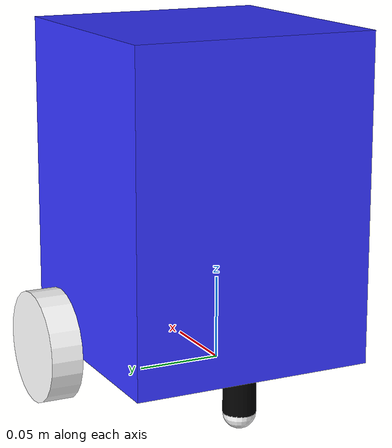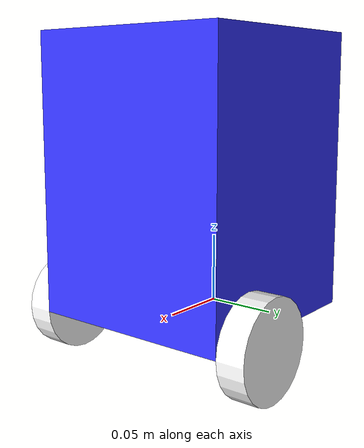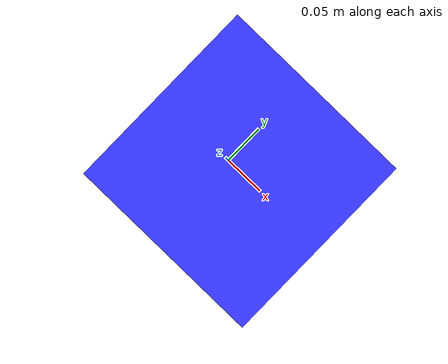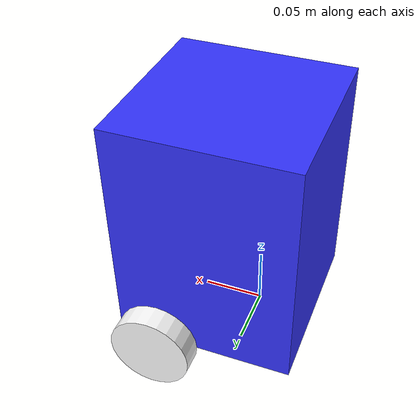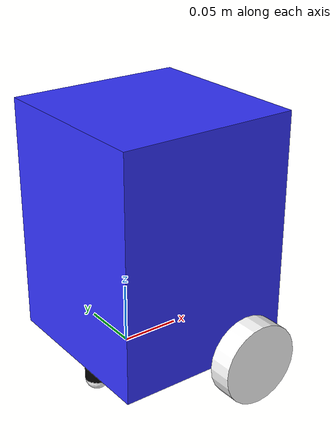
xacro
<?xml version="1.0"?>
<robot xmlns:xacro="http://www.ros.org/wiki/xacro" >

    <xacro:include filename="inertia.xacro"/>

    <material name="white">
        <color rgba="1 1 1 1" />
    </material>

    <material name="orange">
        <color rgba="1 0.3 0.1 1"/>
    </material>

    <material name="blue">
        <color rgba="0.2 0.2 1 1"/>
    </material>

    <material name="black">
        <color rgba="0 0 0 1"/>
    </material>

    <!-- BASE LINK -->

    <link name="base_link">

    </link>

    <!-- CHASSIS LINK -->

    <joint name="chassis_joint" type="fixed">
        <parent link="base_link"/>
        <child link="chassis"/>
        <origin xyz="-0.05 0 0"/>
    </joint>

    <link name="chassis">
        <visual>
            <origin xyz="0.075 0 0.1"/>
            <geometry>
                <box size="0.15 0.15 0.2"/>
            </geometry>
            <material name="blue"/>
        </visual>
        <collision>
            <origin xyz="0.075 0 0.1"/>
            <geometry>
                <box size="0.15 0.15 0.2"/>
            </geometry>
        </collision>
        <xacro:inertial_box mass="1" x="0.15" y="0.15" z="0.3">
            <origin xyz="0.075 0 0.1" rpy="0 0 0"/>
        </xacro:inertial_box>
    </link>
    <gazebo reference="chassis">
        <material>Gazebo/Blue</material>
    </gazebo>

    <!-- LEFT WHEEL LINK -->

    <joint name="left_wheel_joint" type="continuous">
        <parent link="chassis"/>
        <child link="left_wheel"/>
        <origin xyz="0.115 0.085 0" rpy="-${pi/2} 0 0" />
        <axis xyz="0 0 1"/>
    </joint>

    <link name="left_wheel">
        <visual>
            <geometry>
                <cylinder radius="0.035" length="0.02"/>
            </geometry>
            <material name="white"/>
        </visual>
        <collision>
            <geometry>
                <cylinder radius="0.035" length="0.02"/>
            </geometry>
        </collision>
        <xacro:inertial_cylinder mass="0.05" length="0.02" radius="0.035">
            <origin xyz="0 0 0" rpy="0 0 0"/>
        </xacro:inertial_cylinder>
    </link>

    <gazebo reference="left_wheel">
        <material>Gazebo/White</material>
    </gazebo>

    <!-- RIGHT WHEEL LINK -->

    <joint name="right_wheel_joint" type="continuous">
        <parent link="chassis"/>
        <child link="right_wheel"/>
        <origin xyz="0.115 -0.085 0" rpy="${pi/2} 0 0" />
        <axis xyz="0 0 -1"/>
    </joint>

    <link name="right_wheel">
        <visual>
            <geometry>
                <cylinder radius="0.035" length="0.02"/>
            </geometry>
            <material name="white"/>
        </visual>
        <collision>
            <geometry>
                <cylinder radius="0.035" length="0.02"/>
            </geometry>
        </collision>
        <xacro:inertial_cylinder mass="0.05" length="0.02" radius="0.035">
            <origin xyz="0 0 0" rpy="0 0 0"/>
        </xacro:inertial_cylinder>
    </link>

    <gazebo reference="right_wheel">
        <material>Gazebo/White</material>
    </gazebo>

    <!-- CASTER WHEEL LINK -->

    <joint name="caster_wheel_joint_cylinder" type="fixed">
        <parent link="chassis"/>
        <child link="caster_wheel_cylinder"/>
        <origin xyz="0.02 0 0"/>
    </joint>

    <link name="caster_wheel_cylinder">
        <visual>
            <geometry>
                <cylinder radius="0.01" length="0.05"/>
            </geometry>
            <material name="black"/>
        </visual>
        <collision>
            <geometry>
                <cylinder radius="0.01" length="0.05"/>
            </geometry>
        </collision>
        <xacro:inertial_cylinder mass="0.5" length="0.05" radius="0.01">
            <origin xyz="0 0 0" rpy="0 0 0"/>
        </xacro:inertial_cylinder>
    </link>

    <gazebo reference="caster_wheel_cylinder">
        <material>Gazebo/Black</material>

    </gazebo>

    <joint name="caster_wheel_joint_sphere" type="fixed">
        <parent link="chassis"/>
        <child link="caster_wheel_sphere"/>
        <origin xyz="0.02 0 -0.025"/>
    </joint>

    <link name="caster_wheel_sphere">
        <visual>
            <geometry>
                <sphere radius="0.01"/>
            </geometry>
            <material name="white"/>
        </visual>
        <collision>
            <geometry>
                <sphere radius="0.01"/>
            </geometry>
        </collision>
        <xacro:inertial_sphere mass="0.5" radius="0.01">
            <origin xyz="0 0 0" rpy="0 0 0"/>
        </xacro:inertial_sphere>
    </link>

    <gazebo reference="caster_wheel_sphere">
        <material>Gazebo/White</material>
        <mu1 value = "0.001"/>
        <mu2 value = "0.001"/>
    </gazebo>

</robot>
